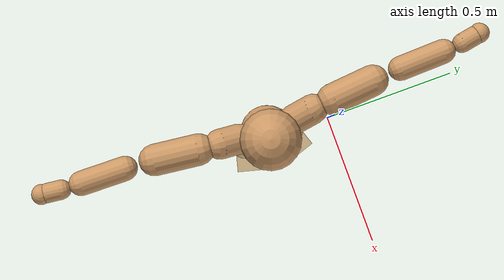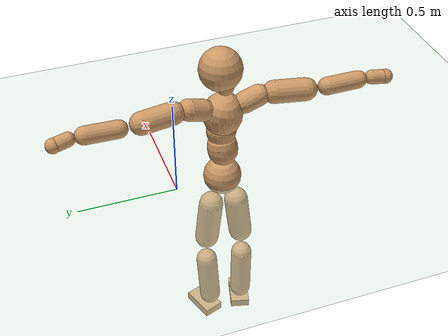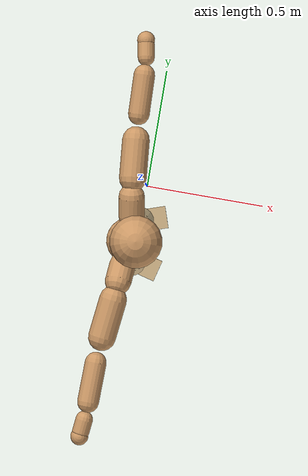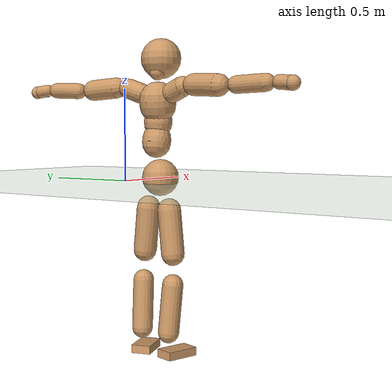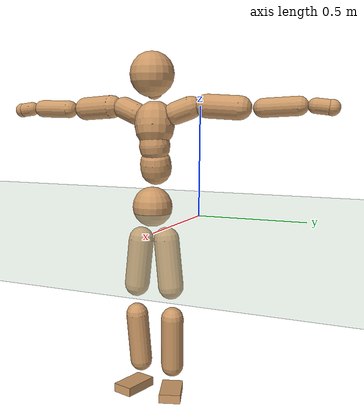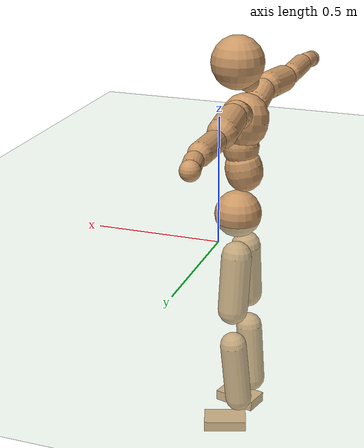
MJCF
<mujoco model="humanoid">
  <compiler coordinate="local"/>
  <default>
    <joint damping="0.0" armature="0.01" stiffness="0.0" limited="true"/>
    <geom conaffinity="1" condim="3" contype="7" margin="0.001" rgba="0.8 0.6 .4 1"/>
  </default>
  <asset>
    <texture type="skybox" builtin="gradient" rgb1=".4 .5 .6" rgb2="0 0 0" width="100" height="100"/>
    <texture builtin="flat" height="1278" mark="cross" markrgb="1 1 1" name="texgeom" random="0.01" rgb1="0.8 0.6 0.4" rgb2="0.8 0.6 0.4" type="cube" width="127"/>
    <texture builtin="checker" height="100" name="texplane" rgb1="0 0 0" rgb2="0.8 0.8 0.8" type="2d" width="100"/>
    <material name="MatPlane" reflectance="0.5" shininess="1" specular="1" texrepeat="60 60" texture="texplane"/>
    <material name="geom" texture="texgeom" texuniform="true"/>
  </asset>
  <worldbody>
    <light cutoff="100" diffuse="1 1 1" dir="-0 0 -1.3" directional="true" exponent="1" pos="0 0 1.3" specular=".1 .1 .1"/>
    <geom conaffinity="1" condim="3" name="floor" pos="0 0 0" rgba="0.8 0.9 0.8 1" size="100 100 .2" type="plane" material="MatPlane"/>
    <body name="Pelvis" pos="-0.0022 -0.2412 0.0284">
      <freejoint name="Pelvis"/>
      <geom type="sphere" contype="1" conaffinity="1" density="500" size="0.0964" pos="0.0000 0.0000 0.0000" name="Pelvis"/>
      <body name="L_Hip" pos="-0.0177 0.0582 -0.0823">
        <joint name="L_Hip_x" type="hinge" pos="0 0 0" axis="1 0 0" stiffness="800" damping="80" armature="0.02" range="-180.0000 180.0000"/>
        <joint name="L_Hip_y" type="hinge" pos="0 0 0" axis="0 1 0" stiffness="800" damping="80" armature="0.02" range="-180.0000 180.0000"/>
        <joint name="L_Hip_z" type="hinge" pos="0 0 0" axis="0 0 1" stiffness="800" damping="80" armature="0.02" range="-180.0000 180.0000"/>
        <geom type="capsule" contype="1" conaffinity="1" density="500" fromto="0.0016 0.0087 -0.0774 0.0064 0.0346 -0.3094" size="0.0617" name="L_Hip"/>
        <body name="L_Knee" pos="0.008 0.0433 -0.3868">
          <joint name="L_Knee_x" type="hinge" pos="0 0 0" axis="1 0 0" stiffness="800" damping="80" armature="0.02" range="-180.0000 180.0000"/>
          <joint name="L_Knee_y" type="hinge" pos="0 0 0" axis="0 1 0" stiffness="800" damping="80" armature="0.02" range="-180.0000 180.0000"/>
          <joint name="L_Knee_z" type="hinge" pos="0 0 0" axis="0 0 1" stiffness="800" damping="80" armature="0.02" range="-180.0000 180.0000"/>
          <geom type="capsule" contype="1" conaffinity="1" density="500" fromto="-0.0075 -0.0030 -0.0855 -0.0300 -0.0119 -0.3421" size="0.0551" name="L_Knee"/>
          <body name="L_Ankle" pos="-0.0374 -0.0149 -0.4277">
            <joint name="L_Ankle_x" type="hinge" pos="0 0 0" axis="1 0 0" stiffness="800" damping="80" armature="0.02" range="-180.0000 180.0000"/>
            <joint name="L_Ankle_y" type="hinge" pos="0 0 0" axis="0 1 0" stiffness="800" damping="80" armature="0.02" range="-180.0000 180.0000"/>
            <joint name="L_Ankle_z" type="hinge" pos="0 0 0" axis="0 0 1" stiffness="800" damping="80" armature="0.02" range="-180.0000 180.0000"/>
            <geom type="box" contype="1" conaffinity="1" density="500" pos="0.0612 0.0203 -0.0302" size="0.0888 0.0519 0.0218" quat="0.9872 0.0000 0.0000 0.1595" name="L_Ankle"/>
            <body name="L_Toe" pos="0.1225 0.0406 -0.0603">
              <joint name="L_Toe_x" type="hinge" pos="0 0 0" axis="1 0 0" stiffness="500" damping="50" armature="0.02" range="-180.0000 180.0000"/>
              <joint name="L_Toe_y" type="hinge" pos="0 0 0" axis="0 1 0" stiffness="500" damping="50" armature="0.02" range="-180.0000 180.0000"/>
              <joint name="L_Toe_z" type="hinge" pos="0 0 0" axis="0 0 1" stiffness="500" damping="50" armature="0.02" range="-180.0000 180.0000"/>
              <geom type="box" contype="1" conaffinity="1" density="500" pos="0.0000 0.0000 0.0294" size="0.0011 0.0025 0.0011" quat="0.9864 0.0000 0.0000 0.1642" name="L_Toe"/>
            </body>
          </body>
        </body>
      </body>
      <body name="R_Hip" pos="-0.0136 -0.06 -0.0906">
        <joint name="R_Hip_x" type="hinge" pos="0 0 0" axis="1 0 0" stiffness="800" damping="80" armature="0.02" range="-180.0000 180.0000"/>
        <joint name="R_Hip_y" type="hinge" pos="0 0 0" axis="0 1 0" stiffness="800" damping="80" armature="0.02" range="-180.0000 180.0000"/>
        <joint name="R_Hip_z" type="hinge" pos="0 0 0" axis="0 0 1" stiffness="800" damping="80" armature="0.02" range="-180.0000 180.0000"/>
        <geom type="capsule" contype="1" conaffinity="1" density="500" fromto="-0.0010 -0.0086 -0.0768 -0.0038 -0.0345 -0.3073" size="0.0611" name="R_Hip"/>
        <body name="R_Knee" pos="-0.0048 -0.0432 -0.3842">
          <joint name="R_Knee_x" type="hinge" pos="0 0 0" axis="1 0 0" stiffness="800" damping="80" armature="0.02" range="-180.0000 180.0000"/>
          <joint name="R_Knee_y" type="hinge" pos="0 0 0" axis="0 1 0" stiffness="800" damping="80" armature="0.02" range="-180.0000 180.0000"/>
          <joint name="R_Knee_z" type="hinge" pos="0 0 0" axis="0 0 1" stiffness="800" damping="80" armature="0.02" range="-180.0000 180.0000"/>
          <geom type="capsule" contype="1" conaffinity="1" density="500" fromto="-0.0069 0.0038 -0.0842 -0.0275 0.0154 -0.3368" size="0.0553" name="R_Knee"/>
          <body name="R_Ankle" pos="-0.0344 0.0192 -0.421">
            <joint name="R_Ankle_x" type="hinge" pos="0 0 0" axis="1 0 0" stiffness="800" damping="80" armature="0.02" range="-180.0000 180.0000"/>
            <joint name="R_Ankle_y" type="hinge" pos="0 0 0" axis="0 1 0" stiffness="800" damping="80" armature="0.02" range="-180.0000 180.0000"/>
            <joint name="R_Ankle_z" type="hinge" pos="0 0 0" axis="0 0 1" stiffness="800" damping="80" armature="0.02" range="-180.0000 180.0000"/>
            <geom type="box" contype="1" conaffinity="1" density="500" pos="0.0653 -0.0173 -0.0312" size="0.0909 0.0511 0.0221" quat="0.9917 0.0000 0.0000 -0.1289" name="R_Ankle"/>
            <body name="R_Toe" pos="0.1307 -0.0346 -0.0624">
              <joint name="R_Toe_x" type="hinge" pos="0 0 0" axis="1 0 0" stiffness="500" damping="50" armature="0.02" range="-180.0000 180.0000"/>
              <joint name="R_Toe_y" type="hinge" pos="0 0 0" axis="0 1 0" stiffness="500" damping="50" armature="0.02" range="-180.0000 180.0000"/>
              <joint name="R_Toe_z" type="hinge" pos="0 0 0" axis="0 0 1" stiffness="500" damping="50" armature="0.02" range="-180.0000 180.0000"/>
              <geom type="box" contype="1" conaffinity="1" density="500" pos="0.0000 0.0000 0.0311" size="0.0011 0.0025 0.0011" quat="0.9928 0.0000 0.0000 -0.1201" name="R_Toe"/>
            </body>
          </body>
        </body>
      </body>
      <body name="Torso" pos="-0.0378 0.0044 0.1245">
        <joint name="Torso_x" type="hinge" pos="0 0 0" axis="1 0 0" stiffness="1000" damping="100" armature="0.02" range="-180.0000 180.0000"/>
        <joint name="Torso_y" type="hinge" pos="0 0 0" axis="0 1 0" stiffness="1000" damping="100" armature="0.02" range="-180.0000 180.0000"/>
        <joint name="Torso_z" type="hinge" pos="0 0 0" axis="0 0 1" stiffness="1000" damping="100" armature="0.02" range="-180.0000 180.0000"/>
        <geom type="capsule" contype="1" conaffinity="1" density="500" fromto="0.0161 0.0027 0.0827 0.0108 0.0018 0.0551" size="0.074865" name="Torso"/>
        <body name="Spine" pos="0.0269 0.0045 0.1378">
          <joint name="Spine_x" type="hinge" pos="0 0 0" axis="1 0 0" stiffness="1000" damping="100" armature="0.02" range="-180.0000 180.0000"/>
          <joint name="Spine_y" type="hinge" pos="0 0 0" axis="0 1 0" stiffness="1000" damping="100" armature="0.02" range="-180.0000 180.0000"/>
          <joint name="Spine_z" type="hinge" pos="0 0 0" axis="0 0 1" stiffness="1000" damping="100" armature="0.02" range="-180.0000 180.0000"/>
          <geom type="capsule" contype="1" conaffinity="1" density="500" fromto="0.0017 -0.0014 0.0336 0.0011 -0.0009 0.0224" size="0.074028" name="Spine"/>
          <body name="Chest" pos="0.0028 -0.0023 0.0561">
            <joint name="Chest_x" type="hinge" pos="0 0 0" axis="1 0 0" stiffness="1000" damping="100" armature="0.02" range="-180.0000 180.0000"/>
            <joint name="Chest_y" type="hinge" pos="0 0 0" axis="0 1 0" stiffness="1000" damping="100" armature="0.02" range="-180.0000 180.0000"/>
            <joint name="Chest_z" type="hinge" pos="0 0 0" axis="0 0 1" stiffness="1000" damping="100" armature="0.02" range="-180.0000 180.0000"/>
            <geom type="capsule" contype="1" conaffinity="1" density="500" fromto="-0.0154 -0.0050 0.0881 -0.0103 -0.0033 0.0587" size="0.095232" name="Chest"/>
            <body name="Neck" pos="-0.0341 -0.0137 0.213">
              <joint name="Neck_x" type="hinge" pos="0 0 0" axis="1 0 0" stiffness="500" damping="50" armature="0.02" range="-180.0000 180.0000"/>
              <joint name="Neck_y" type="hinge" pos="0 0 0" axis="0 1 0" stiffness="500" damping="50" armature="0.02" range="-180.0000 180.0000"/>
              <joint name="Neck_z" type="hinge" pos="0 0 0" axis="0 0 1" stiffness="500" damping="50" armature="0.02" range="-180.0000 180.0000"/>
              <geom type="capsule" contype="1" conaffinity="1" density="500" fromto="0.0100 0.0020 0.0179 0.0401 0.0079 0.0715" size="0.042501" name="Neck"/>
              <body name="Head" pos="0.0502 0.0099 0.0894">
                <joint name="Head_x" type="hinge" pos="0 0 0" axis="1 0 0" stiffness="500" damping="50" armature="0.02" range="-180.0000 180.0000"/>
                <joint name="Head_y" type="hinge" pos="0 0 0" axis="0 1 0" stiffness="500" damping="50" armature="0.02" range="-180.0000 180.0000"/>
                <joint name="Head_z" type="hinge" pos="0 0 0" axis="0 0 1" stiffness="500" damping="50" armature="0.02" range="-180.0000 180.0000"/>
                <geom type="sphere" contype="1" conaffinity="1" density="500" size="0.1050" pos="0.0000 0.0000 0.0000" name="Head"/>
              </body>
            </body>
            <body name="L_Thorax" pos="-0.0191 0.0719 0.1145">
              <joint name="L_Thorax_x" type="hinge" pos="0 0 0" axis="1 0 0" stiffness="500" damping="50" armature="0.02" range="-180.0000 180.0000"/>
              <joint name="L_Thorax_y" type="hinge" pos="0 0 0" axis="0 1 0" stiffness="500" damping="50" armature="0.02" range="-180.0000 180.0000"/>
              <joint name="L_Thorax_z" type="hinge" pos="0 0 0" axis="0 0 1" stiffness="500" damping="50" armature="0.02" range="-180.0000 180.0000"/>
              <geom type="capsule" contype="1" conaffinity="1" density="500" fromto="-0.0038 0.0247 0.0090 -0.0153 0.0988 0.0360" size="0.0532" name="L_Thorax"/>
              <body name="L_Shoulder" pos="-0.0191 0.1235 0.0451">
                <joint name="L_Shoulder_x" type="hinge" pos="0 0 0" axis="1 0 0" stiffness="500" damping="50" armature="0.02" range="-720.0000 720.0000"/>
                <joint name="L_Shoulder_y" type="hinge" pos="0 0 0" axis="0 1 0" stiffness="500" damping="50" armature="0.02" range="-720.0000 720.0000"/>
                <joint name="L_Shoulder_z" type="hinge" pos="0 0 0" axis="0 0 1" stiffness="500" damping="50" armature="0.02" range="-720.0000 720.0000"/>
                <geom type="capsule" contype="1" conaffinity="1" density="500" fromto="-0.0046 0.0512 -0.0031 -0.0183 0.2050 -0.0125" size="0.0554" name="L_Shoulder"/>
                <body name="L_Elbow" pos="-0.0229 0.2562 -0.0157">
                  <joint name="L_Elbow_x" type="hinge" pos="0 0 0" axis="1 0 0" stiffness="500" damping="50" armature="0.02" range="-720.0000 720.0000"/>
                  <joint name="L_Elbow_y" type="hinge" pos="0 0 0" axis="0 1 0" stiffness="500" damping="50" armature="0.02" range="-720.0000 720.0000"/>
                  <joint name="L_Elbow_z" type="hinge" pos="0 0 0" axis="0 0 1" stiffness="500" damping="50" armature="0.02" range="-720.0000 720.0000"/>
                  <geom type="capsule" contype="1" conaffinity="1" density="500" fromto="-0.0015 0.0532 0.0025 -0.0059 0.2129 0.0100" size="0.0429" name="L_Elbow"/>
                  <body name="L_Wrist" pos="-0.0074 0.2661 0.0125">
                    <joint name="L_Wrist_x" type="hinge" pos="0 0 0" axis="1 0 0" stiffness="300" damping="30" armature="0.02" range="-180.0000 180.0000"/>
                    <joint name="L_Wrist_y" type="hinge" pos="0 0 0" axis="0 1 0" stiffness="300" damping="30" armature="0.02" range="-180.0000 180.0000"/>
                    <joint name="L_Wrist_z" type="hinge" pos="0 0 0" axis="0 0 1" stiffness="300" damping="30" armature="0.02" range="-180.0000 180.0000"/>
                    <geom type="capsule" contype="1" conaffinity="1" density="500" fromto="-0.0031 0.0174 -0.0021 -0.0125 0.0695 -0.0085" size="0.0343" name="L_Wrist"/>
                    <body name="L_Hand" pos="-0.0156 0.0869 -0.0106">
                      <joint name="L_Hand_x" type="hinge" pos="0 0 0" axis="1 0 0" stiffness="300" damping="30" armature="0.02" range="-180.0000 180.0000"/>
                      <joint name="L_Hand_y" type="hinge" pos="0 0 0" axis="0 1 0" stiffness="300" damping="30" armature="0.02" range="-180.0000 180.0000"/>
                      <joint name="L_Hand_z" type="hinge" pos="0 0 0" axis="0 0 1" stiffness="300" damping="30" armature="0.02" range="-180.0000 180.0000"/>
                      <geom type="sphere" contype="1" conaffinity="1" density="500" size="0.0357" pos="0.0000 0.0000 0.0000" name="L_Hand"/>
                    </body>
                  </body>
                </body>
              </body>
            </body>
            <body name="R_Thorax" pos="-0.0239 -0.0832 0.1131">
              <joint name="R_Thorax_x" type="hinge" pos="0 0 0" axis="1 0 0" stiffness="500" damping="50" armature="0.02" range="-180.0000 180.0000"/>
              <joint name="R_Thorax_y" type="hinge" pos="0 0 0" axis="0 1 0" stiffness="500" damping="50" armature="0.02" range="-180.0000 180.0000"/>
              <joint name="R_Thorax_z" type="hinge" pos="0 0 0" axis="0 0 1" stiffness="500" damping="50" armature="0.02" range="-180.0000 180.0000"/>
              <geom type="capsule" contype="1" conaffinity="1" density="500" fromto="-0.0017 -0.0227 0.0094 -0.0068 -0.0908 0.0374" size="0.0533" name="R_Thorax"/>
              <body name="R_Shoulder" pos="-0.0084 -0.1135 0.0468">
                <joint name="R_Shoulder_x" type="hinge" pos="0 0 0" axis="1 0 0" stiffness="500" damping="50" armature="0.02" range="-720.0000 720.0000"/>
                <joint name="R_Shoulder_y" type="hinge" pos="0 0 0" axis="0 1 0" stiffness="500" damping="50" armature="0.02" range="-720.0000 720.0000"/>
                <joint name="R_Shoulder_z" type="hinge" pos="0 0 0" axis="0 0 1" stiffness="500" damping="50" armature="0.02" range="-720.0000 720.0000"/>
                <geom type="capsule" contype="1" conaffinity="1" density="500" fromto="-0.0062 -0.0521 -0.0029 -0.0249 -0.2085 -0.0114" size="0.0562" name="R_Shoulder"/>
                <body name="R_Elbow" pos="-0.0312 -0.2606 -0.0143">
                  <joint name="R_Elbow_x" type="hinge" pos="0 0 0" axis="1 0 0" stiffness="500" damping="50" armature="0.02" range="-720.0000 720.0000"/>
                  <joint name="R_Elbow_y" type="hinge" pos="0 0 0" axis="0 1 0" stiffness="500" damping="50" armature="0.02" range="-720.0000 720.0000"/>
                  <joint name="R_Elbow_z" type="hinge" pos="0 0 0" axis="0 0 1" stiffness="500" damping="50" armature="0.02" range="-720.0000 720.0000"/>
                  <geom type="capsule" contype="1" conaffinity="1" density="500" fromto="-0.0012 -0.0539 0.0013 -0.0048 -0.2154 0.0053" size="0.0435" name="R_Elbow"/>
                  <body name="R_Wrist" pos="-0.006 -0.2693 0.0066">
                    <joint name="R_Wrist_x" type="hinge" pos="0 0 0" axis="1 0 0" stiffness="300" damping="30" armature="0.02" range="-180.0000 180.0000"/>
                    <joint name="R_Wrist_y" type="hinge" pos="0 0 0" axis="0 1 0" stiffness="300" damping="30" armature="0.02" range="-180.0000 180.0000"/>
                    <joint name="R_Wrist_z" type="hinge" pos="0 0 0" axis="0 0 1" stiffness="300" damping="30" armature="0.02" range="-180.0000 180.0000"/>
                    <geom type="capsule" contype="1" conaffinity="1" density="500" fromto="-0.0020 -0.0178 -0.0017 -0.0081 -0.0711 -0.0069" size="0.0349" name="R_Wrist"/>
                    <body name="R_Hand" pos="-0.0101 -0.0889 -0.0086">
                      <joint name="R_Hand_x" type="hinge" pos="0 0 0" axis="1 0 0" stiffness="300" damping="30" armature="0.02" range="-180.0000 180.0000"/>
                      <joint name="R_Hand_y" type="hinge" pos="0 0 0" axis="0 1 0" stiffness="300" damping="30" armature="0.02" range="-180.0000 180.0000"/>
                      <joint name="R_Hand_z" type="hinge" pos="0 0 0" axis="0 0 1" stiffness="300" damping="30" armature="0.02" range="-180.0000 180.0000"/>
                      <geom type="sphere" contype="1" conaffinity="1" density="500" size="0.0362" pos="0.0000 0.0000 0.0000" name="R_Hand"/>
                    </body>
                  </body>
                </body>
              </body>
            </body>
          </body>
        </body>
      </body>
    </body>
  </worldbody>
  <actuator>
    <motor name="L_Hip_x" joint="L_Hip_x" gear="500"/>
    <motor name="L_Hip_y" joint="L_Hip_y" gear="500"/>
    <motor name="L_Hip_z" joint="L_Hip_z" gear="500"/>
    <motor name="L_Knee_x" joint="L_Knee_x" gear="500"/>
    <motor name="L_Knee_y" joint="L_Knee_y" gear="500"/>
    <motor name="L_Knee_z" joint="L_Knee_z" gear="500"/>
    <motor name="L_Ankle_x" joint="L_Ankle_x" gear="500"/>
    <motor name="L_Ankle_y" joint="L_Ankle_y" gear="500"/>
    <motor name="L_Ankle_z" joint="L_Ankle_z" gear="500"/>
    <motor name="L_Toe_x" joint="L_Toe_x" gear="500"/>
    <motor name="L_Toe_y" joint="L_Toe_y" gear="500"/>
    <motor name="L_Toe_z" joint="L_Toe_z" gear="500"/>
    <motor name="R_Hip_x" joint="R_Hip_x" gear="500"/>
    <motor name="R_Hip_y" joint="R_Hip_y" gear="500"/>
    <motor name="R_Hip_z" joint="R_Hip_z" gear="500"/>
    <motor name="R_Knee_x" joint="R_Knee_x" gear="500"/>
    <motor name="R_Knee_y" joint="R_Knee_y" gear="500"/>
    <motor name="R_Knee_z" joint="R_Knee_z" gear="500"/>
    <motor name="R_Ankle_x" joint="R_Ankle_x" gear="500"/>
    <motor name="R_Ankle_y" joint="R_Ankle_y" gear="500"/>
    <motor name="R_Ankle_z" joint="R_Ankle_z" gear="500"/>
    <motor name="R_Toe_x" joint="R_Toe_x" gear="500"/>
    <motor name="R_Toe_y" joint="R_Toe_y" gear="500"/>
    <motor name="R_Toe_z" joint="R_Toe_z" gear="500"/>
    <motor name="Torso_x" joint="Torso_x" gear="500"/>
    <motor name="Torso_y" joint="Torso_y" gear="500"/>
    <motor name="Torso_z" joint="Torso_z" gear="500"/>
    <motor name="Spine_x" joint="Spine_x" gear="500"/>
    <motor name="Spine_y" joint="Spine_y" gear="500"/>
    <motor name="Spine_z" joint="Spine_z" gear="500"/>
    <motor name="Chest_x" joint="Chest_x" gear="500"/>
    <motor name="Chest_y" joint="Chest_y" gear="500"/>
    <motor name="Chest_z" joint="Chest_z" gear="500"/>
    <motor name="Neck_x" joint="Neck_x" gear="500"/>
    <motor name="Neck_y" joint="Neck_y" gear="500"/>
    <motor name="Neck_z" joint="Neck_z" gear="500"/>
    <motor name="Head_x" joint="Head_x" gear="500"/>
    <motor name="Head_y" joint="Head_y" gear="500"/>
    <motor name="Head_z" joint="Head_z" gear="500"/>
    <motor name="L_Thorax_x" joint="L_Thorax_x" gear="500"/>
    <motor name="L_Thorax_y" joint="L_Thorax_y" gear="500"/>
    <motor name="L_Thorax_z" joint="L_Thorax_z" gear="500"/>
    <motor name="L_Shoulder_x" joint="L_Shoulder_x" gear="500"/>
    <motor name="L_Shoulder_y" joint="L_Shoulder_y" gear="500"/>
    <motor name="L_Shoulder_z" joint="L_Shoulder_z" gear="500"/>
    <motor name="L_Elbow_x" joint="L_Elbow_x" gear="500"/>
    <motor name="L_Elbow_y" joint="L_Elbow_y" gear="500"/>
    <motor name="L_Elbow_z" joint="L_Elbow_z" gear="500"/>
    <motor name="L_Wrist_x" joint="L_Wrist_x" gear="500"/>
    <motor name="L_Wrist_y" joint="L_Wrist_y" gear="500"/>
    <motor name="L_Wrist_z" joint="L_Wrist_z" gear="500"/>
    <motor name="L_Hand_x" joint="L_Hand_x" gear="500"/>
    <motor name="L_Hand_y" joint="L_Hand_y" gear="500"/>
    <motor name="L_Hand_z" joint="L_Hand_z" gear="500"/>
    <motor name="R_Thorax_x" joint="R_Thorax_x" gear="500"/>
    <motor name="R_Thorax_y" joint="R_Thorax_y" gear="500"/>
    <motor name="R_Thorax_z" joint="R_Thorax_z" gear="500"/>
    <motor name="R_Shoulder_x" joint="R_Shoulder_x" gear="500"/>
    <motor name="R_Shoulder_y" joint="R_Shoulder_y" gear="500"/>
    <motor name="R_Shoulder_z" joint="R_Shoulder_z" gear="500"/>
    <motor name="R_Elbow_x" joint="R_Elbow_x" gear="500"/>
    <motor name="R_Elbow_y" joint="R_Elbow_y" gear="500"/>
    <motor name="R_Elbow_z" joint="R_Elbow_z" gear="500"/>
    <motor name="R_Wrist_x" joint="R_Wrist_x" gear="500"/>
    <motor name="R_Wrist_y" joint="R_Wrist_y" gear="500"/>
    <motor name="R_Wrist_z" joint="R_Wrist_z" gear="500"/>
    <motor name="R_Hand_x" joint="R_Hand_x" gear="500"/>
    <motor name="R_Hand_y" joint="R_Hand_y" gear="500"/>
    <motor name="R_Hand_z" joint="R_Hand_z" gear="500"/>
  </actuator>
  <contact>
    <exclude body1="Torso" body2="Chest"/>
    <exclude body1="Head" body2="Chest"/>
    <exclude body1="R_Knee" body2="R_Toe"/>
    <exclude body1="R_Knee" body2="L_Ankle"/>
    <exclude body1="R_Knee" body2="L_Toe"/>
    <exclude body1="L_Knee" body2="L_Toe"/>
    <exclude body1="L_Knee" body2="R_Ankle"/>
    <exclude body1="L_Knee" body2="R_Toe"/>
    <exclude body1="L_Shoulder" body2="Chest"/>
    <exclude body1="R_Shoulder" body2="Chest"/>
  </contact>
  <sensor/>
  <size njmax="700" nconmax="700"/>
</mujoco>
